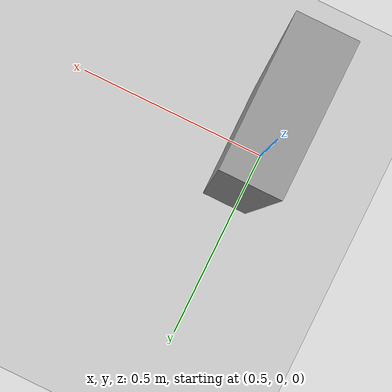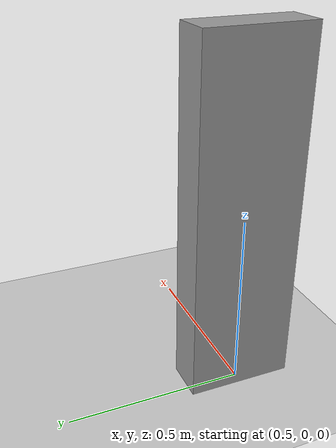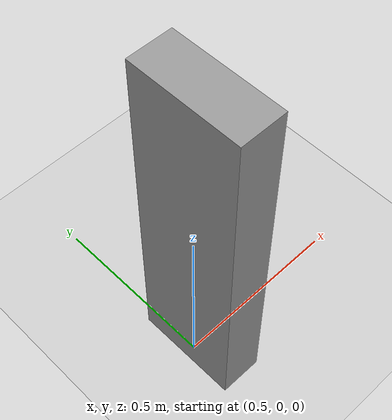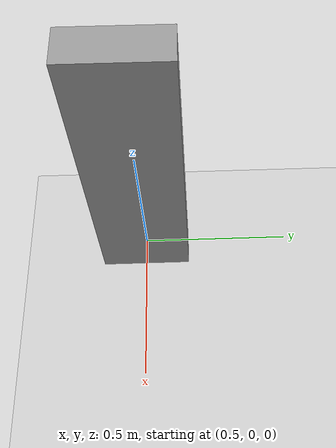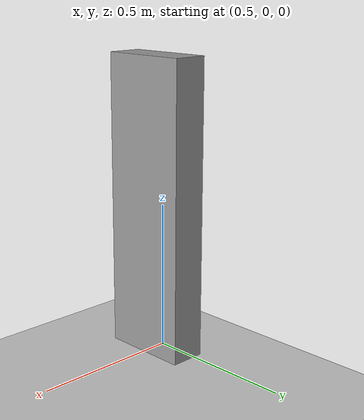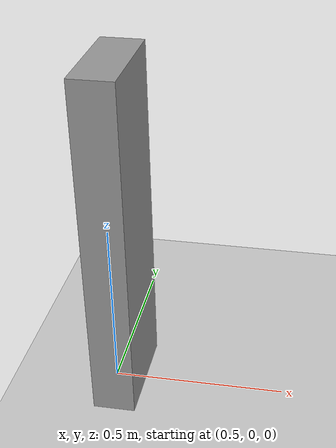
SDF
<?xml version="1.0" ?>
<sdf version="1.6">
  <world name="wall_world">

    <!-- Include the ground plane -->
    <include>
      <uri>model://ground_plane</uri>
    </include>

    <!-- Include the sun for lighting -->
    <include>
      <uri>model://sun</uri>
    </include>

    <!-- Single wall-like block -->
    <model name="wall_block">
      <static>true</static>
      <pose>0.53 0 0.5 0 0 0</pose>
      <link name="wall">
        <inertial>
          <mass>5.0</mass>
          <inertia>
            <!-- rough, small inertia values adequate for a static object -->
            <ixx>0.1</ixx>
            <iyy>0.1</iyy>
            <izz>0.1</izz>
            <ixy>0</ixy>
            <ixz>0</ixz>
            <iyz>0</iyz>
          </inertia>
        </inertial>
        <collision name="collision">
          <geometry>
            <box>
              <size>0.12 0.3 1.0</size>
            </box>
          </geometry>

          <surface>
            <contact>
              <ode>
                <kp>1e6</kp>
                <kd>1e4</kd>
                <max_vel>0.1</max_vel>
                <min_depth>0.001</min_depth>
              </ode>
            </contact>
            <bounce>
              <restitution_coefficient>0.9</restitution_coefficient>
              <threshold>100</threshold>
            </bounce>
          </surface>
        </collision>

        <visual name="visual">
          <geometry>
            <box>
              <size>0.12 0.3 1.0</size>
            </box>
          </geometry>
          <material>
            <ambient>0.3 0.3 0.3 1</ambient>
            <diffuse>0.6 0.6 0.6 1</diffuse>
            <specular>0.1 0.1 0.1 1</specular>
          </material>
        </visual>
      </link>
    </model>

    <scene>
        <shadows>0</shadows>
    </scene>

    <physics type='ode'>
      <max_step_size>0.001</max_step_size> <!-- Smaller = more accurate, but slower -->
      <real_time_update_rate>1000</real_time_update_rate> <!-- Targeted simulation updates per second -->
    </physics>
  </world>
</sdf>
